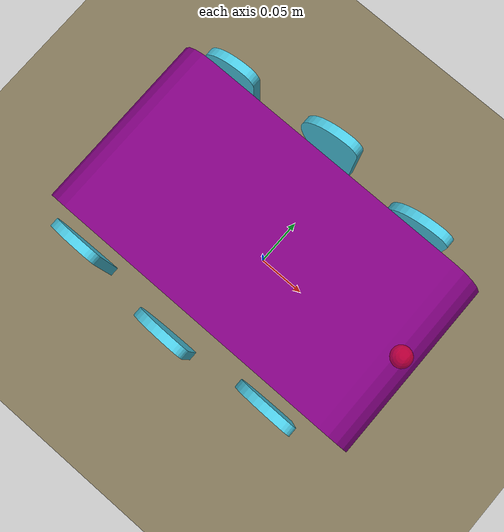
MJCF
<mujoco model="hex">
    <compiler angle="radian" meshdir="hex_meshes/"/>
    <size njmax="500" nconmax="100" />

    <default class="main">
        <default class="leg">
            <geom type="mesh" rgba="0.3 0.8 0.9 1" mesh="leg_convex" />
            <joint pos="0 0 0" axis="0 1 0" armature="0.01" damping="0.2" frictionloss="0.00"/>
        </default>

        <default class="leg_actuator">
          <position gear="1.0" kp="15" forcelimited="true" forcerange="-10 10"/>
        </default>
    </default>

    <asset>
        <mesh name="base_link" file="base_link.STL" />
        <mesh name="leg_convex" file="leg_convex.STL" />

        <texture name="skybox" type="skybox" builtin="gradient" rgb1=".4 .6 .8" rgb2="0 0 0" width="1024" height="1024" mark="random" markrgb="1 1 1"/>
        <texture name="texplane" type="2d" builtin="checker" rgb1="0.5961 0.5647 0.4784" rgb2="0.3843 0.32941 0.19215" width="512" height="512" mark="cross" markrgb=".8 .8 .8"/>
        <material name="matplane" reflectance="0.3" texture="texplane" texrepeat="1 1" texuniform="true"/>
    </asset>

    <worldbody>
        <light directional="true" diffuse=".8 .8 .8" specular="0.1 0.1 0.1" pos="0 0 2.5" dir="0 0 -1" castshadow="false"/>
        <geom name="ground" type="plane" size="6 6 1" pos="0 0 0" quat="1 0 0 0" material="matplane" condim="1"/>

        <body name="base_link" pos="0 0 0.15">
          <joint armature="0" axis="1 0 0" damping="0" limited="false" name="rootx" pos="0 0 0" stiffness="0" type="slide"/>
          <joint armature="0" axis="0 0 1" damping="0" limited="false" name="rootz" pos="0 0 0" stiffness="0" type="slide"/>
          <joint armature="0" axis="0 1 0" damping="0" limited="false" name="rooty" pos="0 0 0" stiffness="0" type="hinge"/>

          <geom type="mesh" rgba="0.5 0.0 0.5 1" mesh="base_link" />
          <inertial pos="0.0 0.0 0" mass="2.0477746" diaginertia="0.5 0.5 0.5" />

          <site name="head" pos="0.15 0 0" rgba="1 0 0 0.5" size="0.01 0.01 0.01" />

          <!-- right side -->

          <body childclass="leg" name="rear_link" pos="-0.11175 0. -0.02995">
            <joint name="rear_joint"/>
            <body name="rear_right_link" pos="0.0 -0.106162 0.0">
                <geom />
                <inertial pos="-0.0146232 -0.0398438 0" mass="0.0477746" diaginertia="0.001 0.001 0.001" />
            </body>
            <body name="rear_left_link" pos="0.0 0.106162 -0.0">
                <geom />
                <inertial pos="-0.0146232 -0.0398438 0" mass="0.0477746" diaginertia="0.001 0.001 0.001" />
            </body>
          </body>

          <body childclass="leg" name="mid_link" pos="0 0. -0.02995">
            <joint name="mid_joint"/>
            <body name="mid_right_link" pos="0 -0.117162 0.0">
                <inertial pos="-0.0146232 -0.0398438 0" mass="0.0477746" diaginertia="0.001 0.001 0.001" />
                <geom />
            </body>
            <body name="mid_left_link" pos="0 0.117162 0.0">
                <inertial pos="-0.0146232 -0.0398438 0" mass="0.0477746" diaginertia="0.001 0.001 0.001" />
                <geom />
            </body>
          </body>

          <body childclass="leg" name="front_link" pos="0.11175 0.0 -0.02995">
            <joint name="front_joint"/>
            <body name="front_right_link" pos="0. -0.106162 0.0">
                <inertial pos="-0.0146232 -0.0398438 0" mass="0.0477746" diaginertia="0.001 0.001 0.001" />
                <geom />
            </body>
            <body name="front_left_link" pos="0.0 0.106162 0.0">
                <inertial pos="-0.0146232 -0.0398438 0" mass="0.0477746" diaginertia="0.001 0.001 0.001" />
                <geom />
            </body>
          </body>
        </body>

    </worldbody>

    <actuator >
        <position joint="rear_joint" class="leg_actuator"/>
        <position joint="mid_joint" class="leg_actuator"/>
        <position joint="front_joint" class="leg_actuator"/>
  </actuator>
</mujoco>
